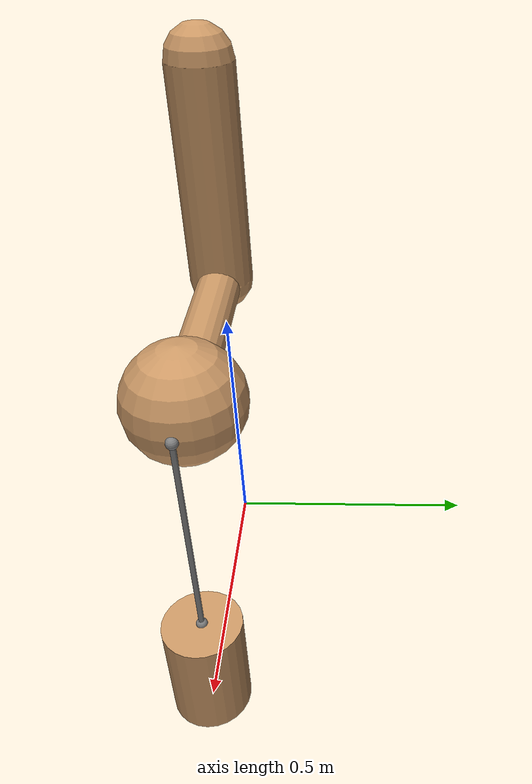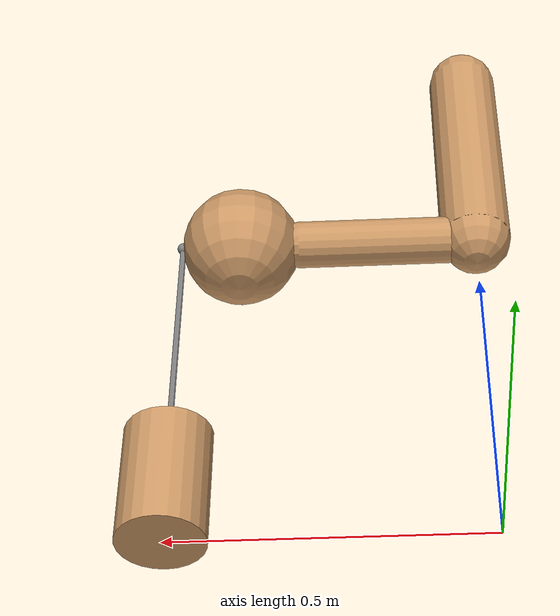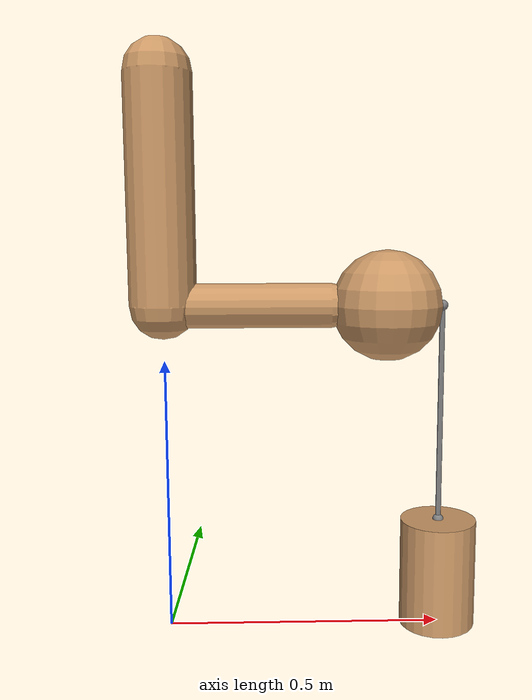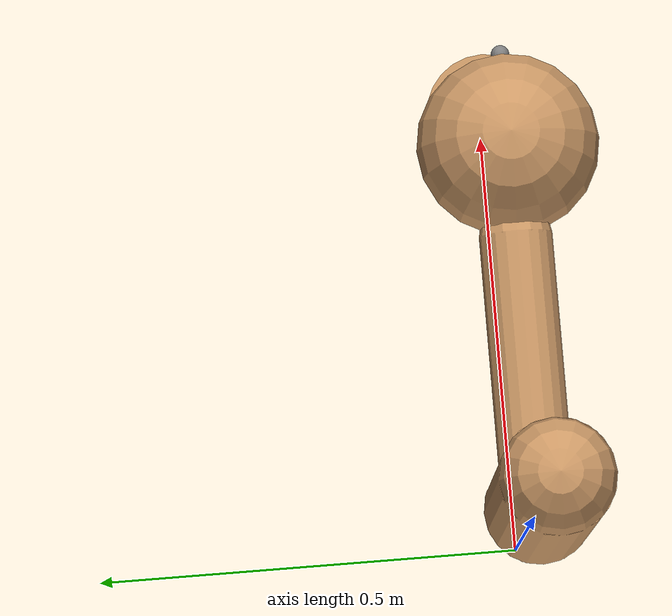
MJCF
<mujoco model="example">
	<compiler coordinate="global" />
	<default>
		<geom rgba=".8 .6 .4 1" />
	</default>
	<asset>
		<texture type="skybox" builtin="gradient" rgb2=".6 .8 1" width="256" height="256" />
	</asset>
	<worldbody>
		<light pos="0 1 1" dir="0 -1 -1" diffuse="1 1 1" />
		<body>
			<geom type="capsule" fromto="0 0 1  0 0 0.6" size="0.06" />
			<joint type="ball" pos="0 0 1" />
			<body>
				<geom type="capsule" fromto="0 0 0.6  0.3 0 0.6" size="0.04" />
				<joint type="hinge" pos="0 0 0.6" axis="0 1 0" />
				<joint type="hinge" pos="0 0 0.6" axis="0 0 1" />
				<body>
					<geom type="sphere" pos="0.4 0 0.6" size="0.1 0.08 0.02" />
					<site name="end1" pos="0.5 0 0.6" type="sphere" size="0.01" />
					<joint type="hinge" pos="0.3 0 0.6" axis="0 0 1" />
					<joint type="hinge" pos="0.3 0 0.6" axis="0 0 1" />
				</body>
			</body>
		</body>
		<body>
			<geom type="cylinder" fromto="0.5 0 0.2  0.5 0 0" size="0.07" />
			<site name="end2" pos="0.5 0 0.2" type="sphere" size="0.01" />
			<joint type="free" />
		</body>
	</worldbody>
	<tendon>
		<spatial limited="true" range="0 0.6" width="0.005">
			<site site="end1" />
			<site site="end2" />
		</spatial>
	</tendon>
</mujoco>
